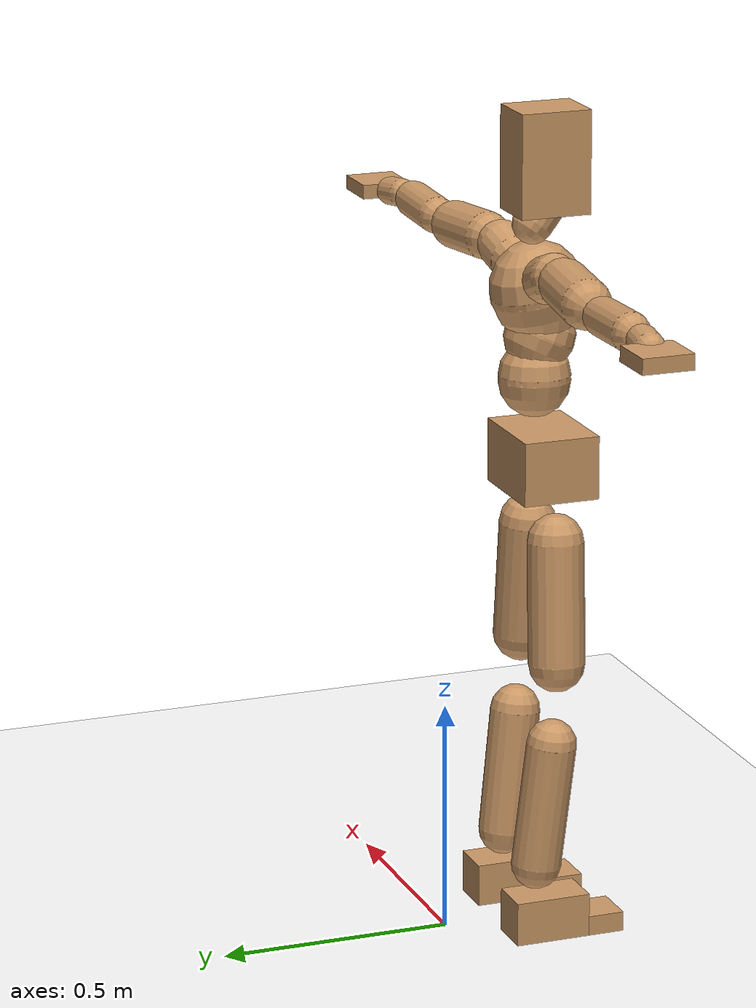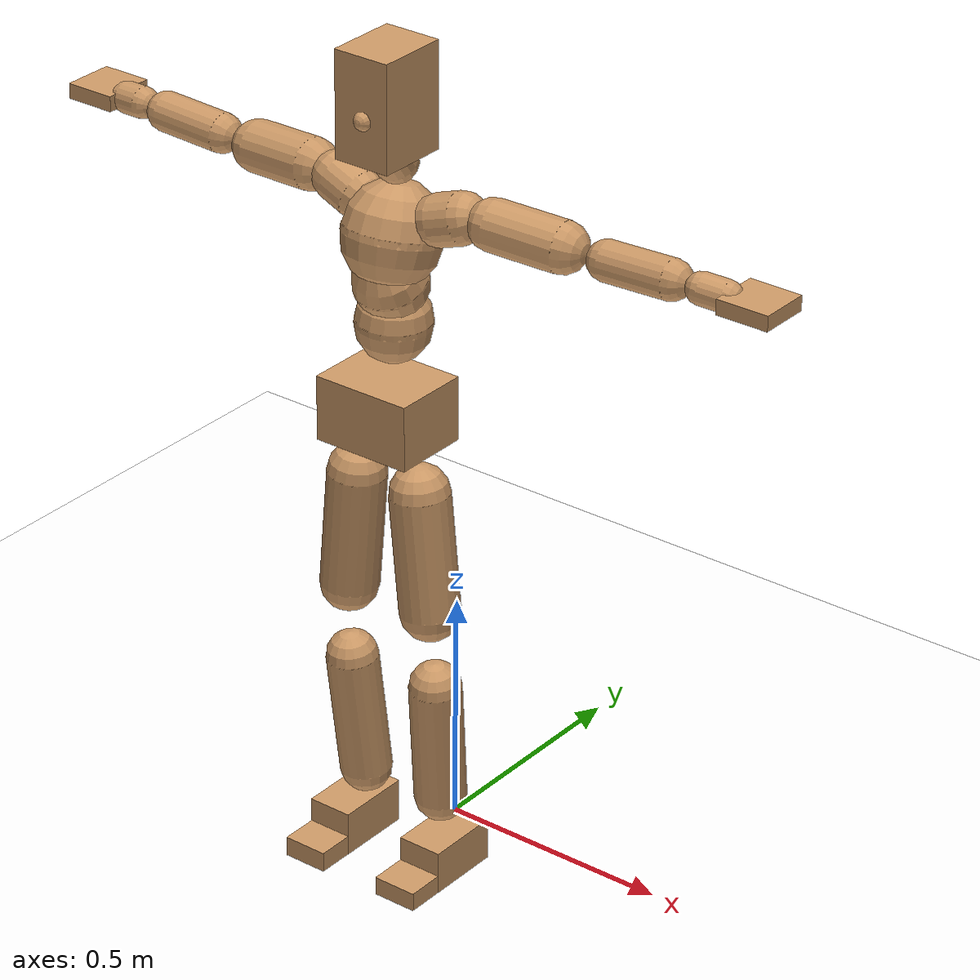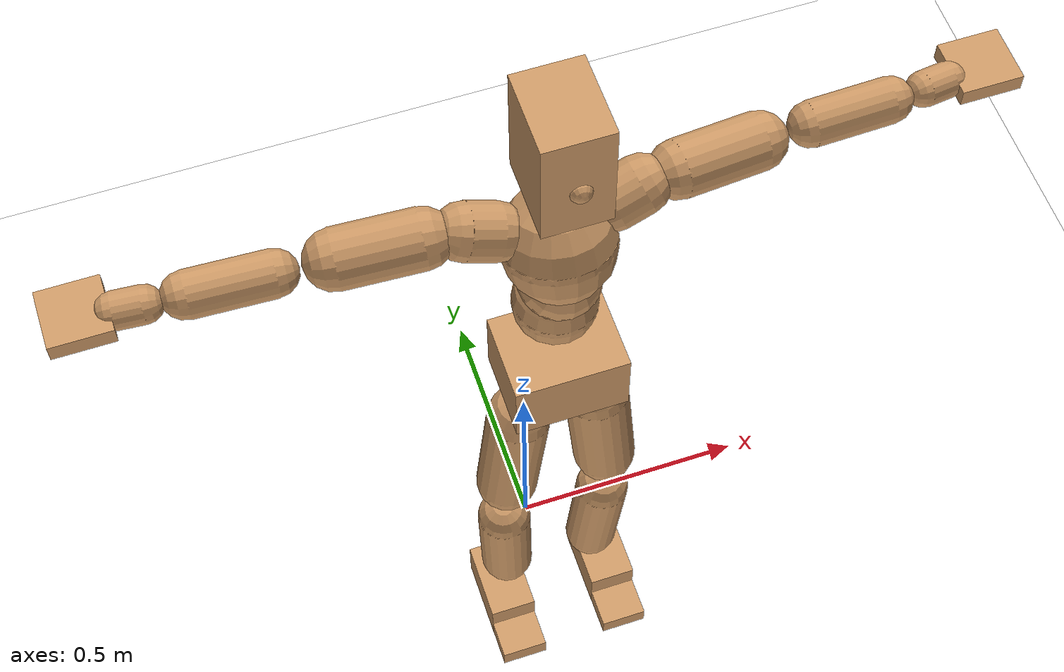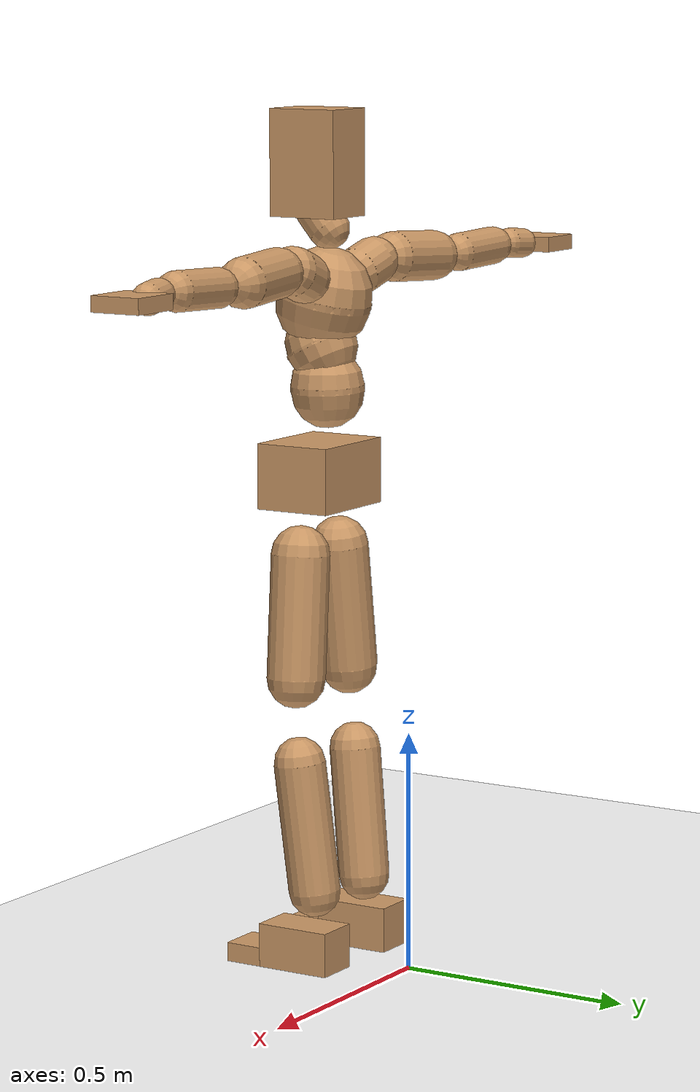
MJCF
<mujoco model="humanoid">
  <option integrator="implicitfast" />

  <visual>
    <global offwidth="1280" offheight="960" />
    <headlight active="1" ambient="0.34 0.34 0.34" diffuse="0.5 0.5 0.5" />
  </visual>

  <default>
    <joint damping="2" stiffness="2" armature="0.01" limited="true" solimplimit="0 .99 .01" />
    <geom condim="1" friction="0.7 0.005 0.0001" solimp=".99 .99 .003" solref="0.015 1" margin="0.001" rgba="0.8 0.6 .4 1" />
    <default class="smplcontact">
      <geom condim="3" friction="1. 0.005 0.0001" solref="0.015 1" solimp="0.98 0.98 0.001" priority="1" />
    </default>
    <default class="stiff_medium">
      <joint stiffness="10" />
    </default>
    <default class="stiff_medium_higher">
      <joint stiffness="50" />
    </default>
    <default class="stiff_high">
      <joint stiffness="100" />
    </default>
  </default>

  <asset>
    <texture type="skybox" builtin="gradient" rgb1="0.99 0.99 0.99" rgb2="0.608 0.828 0.892" width="100" />
    <texture builtin="flat" height="1278" mark="cross" markrgb="1 1 1" name="texgeom" random="0.01" rgb1="0.8 0.6 0.4" rgb2="0.8 0.6 0.4" type="cube" width="127" />
    <texture name="texplane" type="2d" builtin="checker" markrgb="1 1 1" rgb1="0.756 0.772 0.76" rgb2="0.6 0.6 0.6" width="100" height="100" />
    <material name="MatPlane" reflectance="0.5" texture="texplane" texrepeat="1 1" texuniform="true" />
    <material name="geom" texture="texgeom" texuniform="true" />
  </asset>

  <worldbody>
    <light name="tracking_light" pos="0 0 7" dir="0 0 -1" directional="true" cutoff="100" exponent="1" diffuse="1 1 1" specular="0.1 0.1 0.1" mode="trackcom" />
    <camera name="back" pos="0 3 2.4" xyaxes="-1 0 0 0 -1 2" mode="trackcom" />
    <camera name="side" pos="-3 0 2.4" xyaxes="0 -1 0 1 0 2" mode="trackcom" />
    <camera name="front_side" pos="-2.8 -2.8 0.8" xyaxes="0.5 -0.5 0 0.1 0.1 1" mode="trackcom" />
    <geom condim="3" name="floor" pos="0 0 0" rgba="1 1 1 1" size="100 100 .2" type="plane" material="MatPlane" />
    <body name="Pelvis" pos="-0.0018 -0.2233 1.03968" euler="90 0 0">
      <site name="Pelvis" size="0.01" />
      <freejoint name="Pelvis" />
      <geom type="box" pos="0 -0.011473 -0.0055" size="0.1069 0.0684586 0.083" quat="1.0000 0.0000 0.0000 0.0000" density="3165.830099" name="Pelvis" />
      <body name="L_Hip" pos="0.0695 -0.0866636 -0.0068">
        <joint name="L_Hip_x" type="hinge" pos="0 0 0" axis="1 0 0" stiffness="10" range="-160.0 22.92" class="stiff_medium" damping="15" />
        <joint name="L_Hip_y" type="hinge" pos="0 0 0" axis="0 1 0" stiffness="10" range="-70.0 70.0" class="stiff_medium" damping="10" />
        <joint name="L_Hip_z" type="hinge" pos="0 0 0" axis="0 0 1" stiffness="10" range="-28.65 90.0" class="stiff_medium" damping="10" />
        <geom type="capsule" density="2040.816327" fromto="0.00784127 -0.0853401 -0.00102397 0.0311673 -0.341585 -0.00409618" size="0.0615" name="L_Hip" />
        <body name="L_Knee" pos="0.0390086 -0.426926 -0.00512016">
          <joint name="L_Knee_x" type="hinge" pos="0 0 0" axis="1 0 0" range="-5.16 171.89" damping="8" />
          <joint name="L_Knee_y" type="hinge" pos="0 0 0" axis="0 1 0" range="-4.58 6.88" damping="8" />
          <joint name="L_Knee_z" type="hinge" pos="0 0 0" axis="0 0 1" range="-6.88 4.58" damping="8" />
          <geom type="capsule" density="1234.567901" fromto="-0.00307677 -0.0905722 -0.00990841 -0.0124072 -0.362292 -0.039834" size="0.0541" name="L_Knee" />
          <body name="L_Ankle" pos="-0.015484 -0.452865 -0.0497425">
            <joint name="L_Ankle_x" type="hinge" pos="0 0 0" axis="1 0 0" range="-45.84 45.84" class="stiff_medium" damping="6" />
            <joint name="L_Ankle_y" type="hinge" pos="0 0 0" axis="0 1 0" range="-74.48 22.92" class="stiff_medium" damping="3" />
            <joint name="L_Ankle_z" type="hinge" pos="0 0 0" axis="0 0 1" range="-4.58 4.58" class="stiff_medium" damping="6" />
            <geom type="box" pos="0.0233 -0.0239 0.0230626" size="0.0483 0.0464 0.0810051" quat="1.0000 0.0000 0.0000 0.0000" density="449.071558" name="L_Ankle" class="smplcontact" />
            <body name="L_Toe" pos="0.0264 -0.0558 0.113693">
              <joint name="L_Toe_x" type="hinge" pos="0 0 0" axis="1 0 0" range="-91.67 22.92" />
              <joint name="L_Toe_y" type="hinge" pos="0 0 0" axis="0 1 0" range="-4.58 4.58" />
              <joint name="L_Toe_z" type="hinge" pos="0 0 0" axis="0 0 1" range="-4.58 4.58" />
              <geom type="box" pos="-0.003 0.0055 0.0236344" size="0.0478 0.02 0.0472688" quat="1.0000 0.0000 0.0000 0.0000" density="423.206892" name="L_Toe" class="smplcontact" />
            </body>
          </body>
        </body>
      </body>
      <body name="R_Hip" pos="-0.0677 -0.0858102 -0.0043">
        <joint name="R_Hip_x" type="hinge" pos="0 0 0" axis="1 0 0" stiffness="10" range="-160.0 22.92" class="stiff_medium" damping="15" />
        <joint name="R_Hip_y" type="hinge" pos="0 0 0" axis="0 1 0" stiffness="10" range="-70.0 70.0" class="stiff_medium" damping="10" />
        <joint name="R_Hip_z" type="hinge" pos="0 0 0" axis="0 0 1" stiffness="10" range="-90.0 28.65" class="stiff_medium" damping="10" />
        <geom type="capsule" density="2040.816327" fromto="-0.00875195 -0.0870471 -0.00204346 -0.0348089 -0.348299 -0.0080741" size="0.0606" name="R_Hip" />
        <body name="R_Knee" pos="-0.0435608 -0.435346 -0.0101176">
          <joint name="R_Knee_x" type="hinge" pos="0 0 0" axis="1 0 0" range="-5.16 171.89" damping="8" />
          <joint name="R_Knee_y" type="hinge" pos="0 0 0" axis="0 1 0" range="-6.88 4.58" damping="8" />
          <joint name="R_Knee_z" type="hinge" pos="0 0 0" axis="0 0 1" range="-4.58 6.88" damping="8" />
          <geom type="capsule" density="1234.567901" fromto="0.00363218 -0.0906884 -0.00966321 0.014328 -0.362636 -0.038451" size="0.0541" name="R_Knee" />
          <body name="R_Ankle" pos="0.0179602 -0.453325 -0.0481142">
            <joint name="R_Ankle_x" type="hinge" pos="0 0 0" axis="1 0 0" range="-45.84 45.84" class="stiff_medium" damping="6" />
            <joint name="R_Ankle_y" type="hinge" pos="0 0 0" axis="0 1 0" range="-22.92 74.48" class="stiff_medium" damping="3" />
            <joint name="R_Ankle_z" type="hinge" pos="0 0 0" axis="0 0 1" range="-4.58 4.58" class="stiff_medium" damping="6" />
            <geom type="box" pos="-0.0212 -0.0174 0.0243968" size="0.0483 0.0478 0.0824346" quat="1.0000 0.0000 0.0000 0.0000" density="434.700981" name="R_Ankle" class="smplcontact" />
            <body name="R_Toe" pos="-0.0254 -0.0481 0.117505">
              <joint name="R_Toe_x" type="hinge" pos="0 0 0" axis="1 0 0" range="-91.67 22.92" />
              <joint name="R_Toe_y" type="hinge" pos="0 0 0" axis="0 1 0" range="-4.58 4.58" />
              <joint name="R_Toe_z" type="hinge" pos="0 0 0" axis="0 0 1" range="-4.58 4.58" />
              <geom type="box" pos="0.0042 0.0045 0.0216331" size="0.0479 0.0216 0.0469829" quat="1.0000 0.0000 0.0000 0.0000" density="407.384095" name="R_Toe" class="smplcontact" />
            </body>
          </body>
        </body>
      </body>
      <body name="Torso" pos="-0.0025 0.103352 -0.0267">
        <joint name="Torso_x" type="hinge" pos="0 0 0" axis="1 0 0" range="-25.78 57.3" class="stiff_medium" damping="15" />
        <joint name="Torso_y" type="hinge" pos="0 0 0" axis="0 1 0" range="-57.3 57.3" class="stiff_high" damping="20" />
        <joint name="Torso_z" type="hinge" pos="0 0 0" axis="0 0 1" range="-34.38 34.38" class="stiff_high" damping="20" />
        <geom type="capsule" density="2040.816327" fromto="0.00238329 0.0576488 0.000476658 0.00285738 0.0704492 0.000571476" size="0.0769" name="Torso" />
        <body name="Spine" pos="0.00524048 0.128193 0.0010481">
          <joint name="Spine_x" type="hinge" pos="0 0 0" axis="1 0 0" stiffness="10" range="-25.78 57.3" class="stiff_medium" damping="15" />
          <joint name="Spine_y" type="hinge" pos="0 0 0" axis="0 1 0" stiffness="10" range="-57.3 57.3" class="stiff_high" damping="8" />
          <joint name="Spine_z" type="hinge" pos="0 0 0" axis="0 0 1" stiffness="20" range="-34.38 34.38" class="stiff_high" damping="12" />
          <geom type="capsule" density="2040.816327" fromto="0.000676832 0.0225721 0.0107976 0.00077165 0.0275975 0.0132629" size="0.0755" name="Spine" />
          <body name="Chest" pos="0.00144848 0.0501696 0.0240606">
            <joint name="Chest_x" type="hinge" pos="0 0 0" axis="1 0 0" stiffness="10" range="-25.78 57.3" class="stiff_medium" damping="15" />
            <joint name="Chest_y" type="hinge" pos="0 0 0" axis="0 1 0" stiffness="10" range="-57.3 57.3" class="stiff_high" damping="8" />
            <joint name="Chest_z" type="hinge" pos="0 0 0" axis="0 0 1" stiffness="20" range="-34.38 34.38" class="stiff_high" damping="12" />
            <geom type="capsule" density="2040.816327" fromto="-0.00087662 0.0646696 -0.0163882 -0.000971438 0.0789872 -0.0200861" size="0.1002" name="Chest" />
            <body name="Neck" pos="-0.00272762 0.20297 -0.040077">
              <joint name="Neck_x" type="hinge" pos="0 0 0" axis="1 0 0" range="-28.65 57.3" class="stiff_medium_higher" damping="10" />
              <joint name="Neck_y" type="hinge" pos="0 0 0" axis="0 1 0" range="-40.11 40.11" class="stiff_medium_higher" damping="10" />
              <joint name="Neck_z" type="hinge" pos="0 0 0" axis="0 0 1" range="-40.11 40.11" class="stiff_medium_higher" damping="10" />
              <geom type="capsule" density="1000" fromto="0.000951208 0.0123883 0.00981705 0.00390551 0.0495553 0.0391695" size="0.043818" name="Neck" />
              <body name="Head" pos="0.0049574 0.0619458 0.0488878">
                <joint name="Head_x" type="hinge" pos="0 0 0" axis="1 0 0" range="-28.65 57.3" class="stiff_medium_higher" damping="2" />
                <joint name="Head_y" type="hinge" pos="0 0 0" axis="0 1 0" range="-40.11 40.11" class="stiff_medium_higher" damping="2" />
                <joint name="Head_z" type="hinge" pos="0 0 0" axis="0 0 1" range="-40.11 40.11" class="stiff_medium_higher" damping="2" />
                <geom type="box" pos="-0.004221 0.0834829 -0.011658" size="0.060903 0.109976 0.07638" quat="1.0000 0.0000 0.0000 0.0000" density="1018.069894" name="Head" />
                <geom type="capsule" name="nose" size="0.0201 0.01005" pos="0 0.0667101 0.05025" quat="1 0 0 0" mass="0" contype="0" conaffinity="0" />
              </body>
            </body>
            <body name="L_Thorax" pos="0.0788418 0.115386 -0.0324691">
              <joint name="L_Thorax_x" type="hinge" pos="0 0 0" axis="1 0 0" range="-10.89 4.58" class="stiff_medium_higher" damping="20" />
              <joint name="L_Thorax_y" type="hinge" pos="0 0 0" axis="0 1 0" range="-28.65 17.19" class="stiff_medium_higher" damping="20" />
              <joint name="L_Thorax_z" type="hinge" pos="0 0 0" axis="0 0 1" range="-31.51 40.11" class="stiff_medium_higher" damping="20" />
              <geom type="capsule" density="1000" fromto="0.0172567 0.00578385 -0.00170844 0.0690273 0.0231355 -0.00673379" size="0.0521" name="L_Thorax" />
              <body name="L_Shoulder" pos="0.086284 0.0289194 -0.00844222">
                <joint name="L_Shoulder_x" type="hinge" pos="0 0 0" axis="1 0 0" range="-97.4 97.4" class="stiff_medium" damping="6" />
                <joint name="L_Shoulder_y" type="hinge" pos="0 0 0" axis="0 1 0" range="-108.86 80.21" class="stiff_medium" damping="6" />
                <joint name="L_Shoulder_z" type="hinge" pos="0 0 0" axis="0 0 1" range="-97.4 85.94" class="stiff_medium" damping="6" />
                <geom type="capsule" density="1000" fromto="0.0492103 -0.0024688 -0.00521515 0.196937 -0.00967496 -0.0208601" size="0.0517" name="L_Shoulder" />
                <body name="L_Elbow" pos="0.246147 -0.0121438 -0.0260753">
                  <joint name="L_Elbow_x" type="hinge" pos="0 0 0" axis="1 0 0" range="-17.19 4.58" damping="5" />
                  <joint name="L_Elbow_y" type="hinge" pos="0 0 0" axis="0 1 0" range="-180.0 17.19" damping="5" />
                  <joint name="L_Elbow_z" type="hinge" pos="0 0 0" axis="0 0 1" range="-100.84 4.58" damping="5" />
                  <geom type="capsule" density="1000" fromto="0.0472193 0.00170685 -0.000187925 0.189067 0.00682702 -0.00085165" size="0.0405" name="L_Elbow" />
                  <body name="L_Wrist" pos="0.236286 0.00853386 -0.00113958">
                    <joint name="L_Wrist_x" type="hinge" pos="0 0 0" axis="1 0 0" range="-180.0 22.92" />
                    <joint name="L_Wrist_y" type="hinge" pos="0 0 0" axis="0 1 0" range="-17.19 17.19" />
                    <joint name="L_Wrist_z" type="hinge" pos="0 0 0" axis="0 0 1" range="-22.92 22.92" />
                    <geom type="capsule" density="1000" fromto="0.0159296 -0.00151538 -0.00284457 0.0637178 -0.00616146 -0.0113782" size="0.0318" name="L_Wrist" class="smplcontact" />
                    <body name="L_Hand" pos="0.0796478 -0.00777687 -0.0141228">
                      <joint name="L_Hand_x" type="hinge" pos="0 0 0" axis="1 0 0" range="-17.19 17.19" />
                      <joint name="L_Hand_y" type="hinge" pos="0 0 0" axis="0 1 0" range="-51.57 51.57" />
                      <joint name="L_Hand_z" type="hinge" pos="0 0 0" axis="0 0 1" range="-91.67 91.67" />
                      <geom type="box" pos="0.0467453 0.001 -0.0058" size="0.0554685 0.0158 0.0538" quat="1.0000 0.0000 0.0000 0.0000" density="400.552564" name="L_Hand" class="smplcontact" />
                    </body>
                  </body>
                </body>
              </body>
            </body>
            <body name="R_Thorax" pos="-0.0817584 0.112518 -0.0369776">
              <joint name="R_Thorax_x" type="hinge" pos="0 0 0" axis="1 0 0" range="-10.89 4.58" class="stiff_medium_higher" damping="20" />
              <joint name="R_Thorax_y" type="hinge" pos="0 0 0" axis="0 1 0" range="-17.19 28.65" class="stiff_medium_higher" damping="20" />
              <joint name="R_Thorax_z" type="hinge" pos="0 0 0" axis="0 0 1" range="-40.11 31.51" class="stiff_medium_higher" damping="20" />
              <geom type="capsule" density="1000" fromto="-0.0182052 0.00616322 -0.00170501 -0.0728203 0.0246527 -0.00692" size="0.0511" name="R_Thorax" />
              <body name="R_Shoulder" pos="-0.091024 0.0309154 -0.00862486">
                <joint name="R_Shoulder_x" type="hinge" pos="0 0 0" axis="1 0 0" range="-97.4 97.4" class="stiff_medium" damping="6" />
                <joint name="R_Shoulder_y" type="hinge" pos="0 0 0" axis="0 1 0" range="-80.21 108.86" class="stiff_medium" damping="6" />
                <joint name="R_Shoulder_z" type="hinge" pos="0 0 0" axis="0 0 1" range="-85.94 97.4" class="stiff_medium" damping="6" />
                <geom type="capsule" density="1000" fromto="-0.0480724 -0.00256198 -0.00407917 -0.19248 -0.0101474 -0.0162159" size="0.0531" name="R_Shoulder" />
                <body name="R_Elbow" pos="-0.240553 -0.0126094 -0.0202951">
                  <joint name="R_Elbow_x" type="hinge" pos="0 0 0" axis="1 0 0" range="-17.19 4.58" damping="5" />
                  <joint name="R_Elbow_y" type="hinge" pos="0 0 0" axis="0 1 0" range="-17.19 180.0" damping="5" />
                  <joint name="R_Elbow_z" type="hinge" pos="0 0 0" axis="0 0 1" range="-4.58 100.84" damping="5" />
                  <geom type="capsule" density="1000" fromto="-0.0484519 0.00152044 -0.00104292 -0.193618 0.00588206 -0.00417191" size="0.0408" name="R_Elbow" />
                  <body name="R_Wrist" pos="-0.24207 0.00740249 -0.00531483">
                    <joint name="R_Wrist_x" type="hinge" pos="0 0 0" axis="1 0 0" range="-180.0 22.92" />
                    <joint name="R_Wrist_y" type="hinge" pos="0 0 0" axis="0 1 0" range="-17.19 17.19" />
                    <joint name="R_Wrist_z" type="hinge" pos="0 0 0" axis="0 0 1" range="-22.92 22.92" />
                    <geom type="capsule" density="1000" fromto="-0.0160241 -0.00113621 -0.0019931 -0.0641916 -0.00464447 -0.00787181" size="0.0326" name="R_Wrist" class="smplcontact" />
                    <body name="R_Hand" pos="-0.0802164 -0.00578072 -0.00976499">
                      <joint name="R_Hand_x" type="hinge" pos="0 0 0" axis="1 0 0" range="-17.19 17.19" />
                      <joint name="R_Hand_y" type="hinge" pos="0 0 0" axis="0 1 0" range="-51.57 51.57" />
                      <joint name="R_Hand_z" type="hinge" pos="0 0 0" axis="0 0 1" range="-91.67 91.67" />
                      <geom type="box" pos="-0.0438059 -0.0009 -0.0079" size="0.0539514 0.0164 0.0546" quat="1.0000 0.0000 0.0000 0.0000" density="403.679611" name="R_Hand" class="smplcontact" />
                    </body>
                  </body>
                </body>
              </body>
            </body>
          </body>
        </body>
      </body>
    </body>
  </worldbody>
  <actuator>
    <general name="L_Hip_x" joint="L_Hip_x" biastype="affine" gainprm="287.33006409732246" biasprm="-215.3247604770444 -180 -2.0" ctrllimited="true" ctrlrange="-1 1" forcerange="-360 360" />
    <general name="L_Hip_y" joint="L_Hip_y" biastype="affine" gainprm="219.9114857512855" biasprm="0.0 -180 -2.0" ctrllimited="true" ctrlrange="-1 1" forcerange="-360 360" />
    <general name="L_Hip_z" joint="L_Hip_z" biastype="affine" gainprm="186.3749841742145" biasprm="96.3683546488669 -180 -2.0" ctrllimited="true" ctrlrange="-1 1" forcerange="-360 360" />
    <general name="L_Knee_x" joint="L_Knee_x" biastype="affine" gainprm="278.10948965903646" biasprm="261.8988715665131 -180 -2.0" ctrllimited="true" ctrlrange="-1 1" forcerange="-360 360" />
    <general name="L_Knee_y" joint="L_Knee_y" biastype="affine" gainprm="18.001325905069514" biasprm="3.612831551628262 -180 -2.0" ctrllimited="true" ctrlrange="-1 1" forcerange="-360 360" />
    <general name="L_Knee_z" joint="L_Knee_z" biastype="affine" gainprm="18.001325905069514" biasprm="-3.612831551628262 -180 -2.0" ctrllimited="true" ctrlrange="-1 1" forcerange="-360 360" />
    <general name="L_Ankle_x" joint="L_Ankle_x" biastype="affine" gainprm="72.00530362027807" biasprm="0.0 -90 -2.0" ctrllimited="true" ctrlrange="-1 1" forcerange="-180 180" />
    <general name="L_Ankle_y" joint="L_Ankle_y" biastype="affine" gainprm="76.49778111491148" biasprm="-40.49512930477244 -90 -2.0" ctrllimited="true" ctrlrange="-1 1" forcerange="-180 180" />
    <general name="L_Ankle_z" joint="L_Ankle_z" biastype="affine" gainprm="7.1942471767206255" biasprm="0.0 -90 -2.0" ctrllimited="true" ctrlrange="-1 1" forcerange="-180 180" />
    <general name="L_Toe_x" joint="L_Toe_x" biastype="affine" gainprm="71.99902043497087" biasprm="-43.19689898685965 -72 -0.8" ctrllimited="true" ctrlrange="-1 1" forcerange="-144 144" />
    <general name="L_Toe_y" joint="L_Toe_y" biastype="affine" gainprm="5.755397741376501" biasprm="0.0 -72 -0.8" ctrllimited="true" ctrlrange="-1 1" forcerange="-144 144" />
    <general name="L_Toe_z" joint="L_Toe_z" biastype="affine" gainprm="5.755397741376501" biasprm="0.0 -72 -0.8" ctrllimited="true" ctrlrange="-1 1" forcerange="-144 144" />
    <general name="R_Hip_x" joint="R_Hip_x" biastype="affine" gainprm="287.33006409732246" biasprm="-215.3247604770444 -180 -2.0" ctrllimited="true" ctrlrange="-1 1" forcerange="-360 360" />
    <general name="R_Hip_y" joint="R_Hip_y" biastype="affine" gainprm="219.9114857512855" biasprm="0.0 -180 -2.0" ctrllimited="true" ctrlrange="-1 1" forcerange="-360 360" />
    <general name="R_Hip_z" joint="R_Hip_z" biastype="affine" gainprm="186.3749841742145" biasprm="-96.3683546488669 -180 -2.0" ctrllimited="true" ctrlrange="-1 1" forcerange="-360 360" />
    <general name="R_Knee_x" joint="R_Knee_x" biastype="affine" gainprm="278.10948965903646" biasprm="261.8988715665131 -180 -2.0" ctrllimited="true" ctrlrange="-1 1" forcerange="-360 360" />
    <general name="R_Knee_y" joint="R_Knee_y" biastype="affine" gainprm="18.001325905069514" biasprm="-3.612831551628262 -180 -2.0" ctrllimited="true" ctrlrange="-1 1" forcerange="-360 360" />
    <general name="R_Knee_z" joint="R_Knee_z" biastype="affine" gainprm="18.001325905069514" biasprm="3.612831551628262 -180 -2.0" ctrllimited="true" ctrlrange="-1 1" forcerange="-360 360" />
    <general name="R_Ankle_x" joint="R_Ankle_x" biastype="affine" gainprm="72.00530362027807" biasprm="0.0 -90 -2.0" ctrllimited="true" ctrlrange="-1 1" forcerange="-180 180" />
    <general name="R_Ankle_y" joint="R_Ankle_y" biastype="affine" gainprm="76.49778111491148" biasprm="40.49512930477244 -90 -2.0" ctrllimited="true" ctrlrange="-1 1" forcerange="-180 180" />
    <general name="R_Ankle_z" joint="R_Ankle_z" biastype="affine" gainprm="7.1942471767206255" biasprm="0.0 -90 -2.0" ctrllimited="true" ctrlrange="-1 1" forcerange="-180 180" />
    <general name="R_Toe_x" joint="R_Toe_x" biastype="affine" gainprm="71.99902043497087" biasprm="-43.19689898685965 -72 -0.8" ctrllimited="true" ctrlrange="-1 1" forcerange="-144 144" />
    <general name="R_Toe_y" joint="R_Toe_y" biastype="affine" gainprm="5.755397741376501" biasprm="0.0 -72 -0.8" ctrllimited="true" ctrlrange="-1 1" forcerange="-144 144" />
    <general name="R_Toe_z" joint="R_Toe_z" biastype="affine" gainprm="5.755397741376501" biasprm="0.0 -72 -0.8" ctrllimited="true" ctrlrange="-1 1" forcerange="-144 144" />
    <general name="Torso_x" joint="Torso_x" biastype="affine" gainprm="174.00234510682668" biasprm="66.0153336274335 -240 -4.0" ctrllimited="true" ctrlrange="-1 1" forcerange="-360 360" />
    <general name="Torso_y" joint="Torso_y" biastype="affine" gainprm="240.0176787342602" biasprm="0.0 -240 -4.0" ctrllimited="true" ctrlrange="-1 1" forcerange="-360 360" />
    <general name="Torso_z" joint="Torso_z" biastype="affine" gainprm="144.01060724055614" biasprm="0.0 -240 -4.0" ctrllimited="true" ctrlrange="-1 1" forcerange="-360 360" />
    <general name="Spine_x" joint="Spine_x" biastype="affine" gainprm="174.00234510682668" biasprm="66.0153336274335 -240 -4.0" ctrllimited="true" ctrlrange="-1 1" forcerange="-360 360" />
    <general name="Spine_y" joint="Spine_y" biastype="affine" gainprm="240.0176787342602" biasprm="0.0 -240 -4.0" ctrllimited="true" ctrlrange="-1 1" forcerange="-360 360" />
    <general name="Spine_z" joint="Spine_z" biastype="affine" gainprm="144.01060724055614" biasprm="0.0 -240 -4.0" ctrllimited="true" ctrlrange="-1 1" forcerange="-360 360" />
    <general name="Chest_x" joint="Chest_x" biastype="affine" gainprm="174.00234510682668" biasprm="66.0153336274335 -240 -4.0" ctrllimited="true" ctrlrange="-1 1" forcerange="-360 360" />
    <general name="Chest_y" joint="Chest_y" biastype="affine" gainprm="240.0176787342602" biasprm="0.0 -240 -4.0" ctrllimited="true" ctrlrange="-1 1" forcerange="-360 360" />
    <general name="Chest_z" joint="Chest_z" biastype="affine" gainprm="144.01060724055614" biasprm="0.0 -240 -4.0" ctrllimited="true" ctrlrange="-1 1" forcerange="-360 360" />
    <general name="Neck_x" joint="Neck_x" biastype="affine" gainprm="27.00198885760427" biasprm="9.000662952534757 -36 -0.8" ctrllimited="true" ctrlrange="-1 1" forcerange="-72 72" />
    <general name="Neck_y" joint="Neck_y" biastype="affine" gainprm="25.20185626709732" biasprm="0.0 -36 -0.8" ctrllimited="true" ctrlrange="-1 1" forcerange="-72 72" />
    <general name="Neck_z" joint="Neck_z" biastype="affine" gainprm="25.20185626709732" biasprm="0.0 -36 -0.8" ctrllimited="true" ctrlrange="-1 1" forcerange="-72 72" />
    <general name="Head_x" joint="Head_x" biastype="affine" gainprm="18.001325905069514" biasprm="6.000441968356505 -24 -0.8" ctrllimited="true" ctrlrange="-1 1" forcerange="-48 48" />
    <general name="Head_y" joint="Head_y" biastype="affine" gainprm="16.801237511398213" biasprm="0.0 -24 -0.8" ctrllimited="true" ctrlrange="-1 1" forcerange="-48 48" />
    <general name="Head_z" joint="Head_z" biastype="affine" gainprm="16.801237511398213" biasprm="0.0 -24 -0.8" ctrllimited="true" ctrlrange="-1 1" forcerange="-48 48" />
    <general name="L_Thorax_x" joint="L_Thorax_x" biastype="affine" gainprm="16.200146117011364" biasprm="-6.6078165480505335 -120 -1.6" ctrllimited="true" ctrlrange="-1 1" forcerange="-240 240" />
    <general name="L_Thorax_y" joint="L_Thorax_y" biastype="affine" gainprm="48.00353574685204" biasprm="-12.00088393671301 -120 -1.6" ctrllimited="true" ctrlrange="-1 1" forcerange="-240 240" />
    <general name="L_Thorax_z" joint="L_Thorax_z" biastype="affine" gainprm="75.00028861670033" biasprm="9.00589894029074 -120 -1.6" ctrllimited="true" ctrlrange="-1 1" forcerange="-240 240" />
    <general name="L_Shoulder_x" joint="L_Shoulder_x" biastype="affine" gainprm="81.5976331892389" biasprm="0.0 -48 -1.6" ctrllimited="true" ctrlrange="-1 1" forcerange="-96 96" />
    <general name="L_Shoulder_y" joint="L_Shoulder_y" biastype="affine" gainprm="79.19745640189629" biasprm="-12.00088393671301 -48 -1.6" ctrllimited="true" ctrlrange="-1 1" forcerange="-96 96" />
    <general name="L_Shoulder_z" joint="L_Shoulder_z" biastype="affine" gainprm="76.79727961455369" biasprm="-4.800353574685214 -48 -1.6" ctrllimited="true" ctrlrange="-1 1" forcerange="-96 96" />
    <general name="L_Elbow_x" joint="L_Elbow_x" biastype="affine" gainprm="13.67849441372996" biasprm="-7.923096672353461 -72 -0.8" ctrllimited="true" ctrlrange="-1 1" forcerange="-144 144" />
    <general name="L_Elbow_y" joint="L_Elbow_y" biastype="affine" gainprm="123.89813107227425" biasprm="-102.29653998619085 -72 -0.8" ctrllimited="true" ctrlrange="-1 1" forcerange="-144 144" />
    <general name="L_Elbow_z" joint="L_Elbow_z" biastype="affine" gainprm="66.23733950828719" biasprm="-60.4819417669107 -72 -0.8" ctrllimited="true" ctrlrange="-1 1" forcerange="-144 144" />
    <general name="L_Wrist_x" joint="L_Wrist_x" biastype="affine" gainprm="21.24973270888136" biasprm="-16.449379134196157 -12 -0.8" ctrllimited="true" ctrlrange="-1 1" forcerange="-24 24" />
    <general name="L_Wrist_y" joint="L_Wrist_y" biastype="affine" gainprm="3.6002651810139037" biasprm="0.0 -12 -0.8" ctrllimited="true" ctrlrange="-1 1" forcerange="-24 24" />
    <general name="L_Wrist_z" joint="L_Wrist_z" biastype="affine" gainprm="4.800353574685205" biasprm="0.0 -12 -0.8" ctrllimited="true" ctrlrange="-1 1" forcerange="-24 24" />
    <general name="L_Hand_x" joint="L_Hand_x" biastype="affine" gainprm="3.6002651810139037" biasprm="0.0 -12 -0.8" ctrllimited="true" ctrlrange="-1 1" forcerange="-24 24" />
    <general name="L_Hand_y" joint="L_Hand_y" biastype="affine" gainprm="10.800795543041708" biasprm="0.0 -12 -0.8" ctrllimited="true" ctrlrange="-1 1" forcerange="-24 24" />
    <general name="L_Hand_z" joint="L_Hand_z" biastype="affine" gainprm="19.199319903638422" biasprm="0.0 -12 -0.8" ctrllimited="true" ctrlrange="-1 1" forcerange="-24 24" />
    <general name="R_Thorax_x" joint="R_Thorax_x" biastype="affine" gainprm="16.200146117011364" biasprm="-6.6078165480505335 -120 -1.6" ctrllimited="true" ctrlrange="-1 1" forcerange="-240 240" />
    <general name="R_Thorax_y" joint="R_Thorax_y" biastype="affine" gainprm="48.00353574685204" biasprm="12.000883936713002 -120 -1.6" ctrllimited="true" ctrlrange="-1 1" forcerange="-240 240" />
    <general name="R_Thorax_z" joint="R_Thorax_z" biastype="affine" gainprm="75.00028861670033" biasprm="-9.00589894029074 -120 -1.6" ctrllimited="true" ctrlrange="-1 1" forcerange="-240 240" />
    <general name="R_Shoulder_x" joint="R_Shoulder_x" biastype="affine" gainprm="81.5976331892389" biasprm="0.0 -48 -1.6" ctrllimited="true" ctrlrange="-1 1" forcerange="-96 96" />
    <general name="R_Shoulder_y" joint="R_Shoulder_y" biastype="affine" gainprm="79.19745640189629" biasprm="12.00088393671301 -48 -1.6" ctrllimited="true" ctrlrange="-1 1" forcerange="-96 96" />
    <general name="R_Shoulder_z" joint="R_Shoulder_z" biastype="affine" gainprm="76.79727961455369" biasprm="4.800353574685204 -48 -1.6" ctrllimited="true" ctrlrange="-1 1" forcerange="-96 96" />
    <general name="R_Elbow_x" joint="R_Elbow_x" biastype="affine" gainprm="13.67849441372996" biasprm="-7.923096672353461 -72 -0.8" ctrllimited="true" ctrlrange="-1 1" forcerange="-144 144" />
    <general name="R_Elbow_y" joint="R_Elbow_y" biastype="affine" gainprm="123.89813107227425" biasprm="102.29653998619085 -72 -0.8" ctrllimited="true" ctrlrange="-1 1" forcerange="-144 144" />
    <general name="R_Elbow_z" joint="R_Elbow_z" biastype="affine" gainprm="66.23733950828719" biasprm="60.481941766910694 -72 -0.8" ctrllimited="true" ctrlrange="-1 1" forcerange="-144 144" />
    <general name="R_Wrist_x" joint="R_Wrist_x" biastype="affine" gainprm="21.24973270888136" biasprm="-16.449379134196157 -12 -0.8" ctrllimited="true" ctrlrange="-1 1" forcerange="-24 24" />
    <general name="R_Wrist_y" joint="R_Wrist_y" biastype="affine" gainprm="3.6002651810139037" biasprm="0.0 -12 -0.8" ctrllimited="true" ctrlrange="-1 1" forcerange="-24 24" />
    <general name="R_Wrist_z" joint="R_Wrist_z" biastype="affine" gainprm="4.800353574685205" biasprm="0.0 -12 -0.8" ctrllimited="true" ctrlrange="-1 1" forcerange="-24 24" />
    <general name="R_Hand_x" joint="R_Hand_x" biastype="affine" gainprm="3.6002651810139037" biasprm="0.0 -12 -0.8" ctrllimited="true" ctrlrange="-1 1" forcerange="-24 24" />
    <general name="R_Hand_y" joint="R_Hand_y" biastype="affine" gainprm="10.800795543041708" biasprm="0.0 -12 -0.8" ctrllimited="true" ctrlrange="-1 1" forcerange="-24 24" />
    <general name="R_Hand_z" joint="R_Hand_z" biastype="affine" gainprm="19.199319903638422" biasprm="0.0 -12 -0.8" ctrllimited="true" ctrlrange="-1 1" forcerange="-24 24" />
  </actuator>
  <contact>
    <exclude body1="Torso" body2="Chest" />
    <exclude body1="Head" body2="Chest" />
    <exclude body1="R_Knee" body2="R_Toe" />
    <exclude body1="R_Knee" body2="L_Ankle" />
    <exclude body1="R_Knee" body2="L_Toe" />
    <exclude body1="L_Knee" body2="L_Toe" />
    <exclude body1="L_Knee" body2="R_Ankle" />
    <exclude body1="L_Knee" body2="R_Toe" />
    <exclude body1="L_Shoulder" body2="Chest" />
    <exclude body1="R_Shoulder" body2="Chest" />
  </contact>
  <sensor>
    <framelinvel name="sensor_Pelvis_framelinvel" objtype="xbody" objname="Pelvis" />
    <framelinvel name="sensor_L_Hip_framelinvel" objtype="xbody" objname="L_Hip" />
    <framelinvel name="sensor_L_Knee_framelinvel" objtype="xbody" objname="L_Knee" />
    <framelinvel name="sensor_L_Ankle_framelinvel" objtype="xbody" objname="L_Ankle" />
    <framelinvel name="sensor_L_Toe_framelinvel" objtype="xbody" objname="L_Toe" />
    <framelinvel name="sensor_R_Hip_framelinvel" objtype="xbody" objname="R_Hip" />
    <framelinvel name="sensor_R_Knee_framelinvel" objtype="xbody" objname="R_Knee" />
    <framelinvel name="sensor_R_Ankle_framelinvel" objtype="xbody" objname="R_Ankle" />
    <framelinvel name="sensor_R_Toe_framelinvel" objtype="xbody" objname="R_Toe" />
    <framelinvel name="sensor_Torso_framelinvel" objtype="xbody" objname="Torso" />
    <framelinvel name="sensor_Spine_framelinvel" objtype="xbody" objname="Spine" />
    <framelinvel name="sensor_Chest_framelinvel" objtype="xbody" objname="Chest" />
    <framelinvel name="sensor_Neck_framelinvel" objtype="xbody" objname="Neck" />
    <framelinvel name="sensor_Head_framelinvel" objtype="xbody" objname="Head" />
    <framelinvel name="sensor_L_Thorax_framelinvel" objtype="xbody" objname="L_Thorax" />
    <framelinvel name="sensor_L_Shoulder_framelinvel" objtype="xbody" objname="L_Shoulder" />
    <framelinvel name="sensor_L_Elbow_framelinvel" objtype="xbody" objname="L_Elbow" />
    <framelinvel name="sensor_L_Wrist_framelinvel" objtype="xbody" objname="L_Wrist" />
    <framelinvel name="sensor_L_Hand_framelinvel" objtype="xbody" objname="L_Hand" />
    <framelinvel name="sensor_R_Thorax_framelinvel" objtype="xbody" objname="R_Thorax" />
    <framelinvel name="sensor_R_Shoulder_framelinvel" objtype="xbody" objname="R_Shoulder" />
    <framelinvel name="sensor_R_Elbow_framelinvel" objtype="xbody" objname="R_Elbow" />
    <framelinvel name="sensor_R_Wrist_framelinvel" objtype="xbody" objname="R_Wrist" />
    <framelinvel name="sensor_R_Hand_framelinvel" objtype="xbody" objname="R_Hand" />
    <frameangvel name="sensor_Pelvis_frameangvel" objtype="xbody" objname="Pelvis" />
    <frameangvel name="sensor_L_Hip_frameangvel" objtype="xbody" objname="L_Hip" />
    <frameangvel name="sensor_L_Knee_frameangvel" objtype="xbody" objname="L_Knee" />
    <frameangvel name="sensor_L_Ankle_frameangvel" objtype="xbody" objname="L_Ankle" />
    <frameangvel name="sensor_L_Toe_frameangvel" objtype="xbody" objname="L_Toe" />
    <frameangvel name="sensor_R_Hip_frameangvel" objtype="xbody" objname="R_Hip" />
    <frameangvel name="sensor_R_Knee_frameangvel" objtype="xbody" objname="R_Knee" />
    <frameangvel name="sensor_R_Ankle_frameangvel" objtype="xbody" objname="R_Ankle" />
    <frameangvel name="sensor_R_Toe_frameangvel" objtype="xbody" objname="R_Toe" />
    <frameangvel name="sensor_Torso_frameangvel" objtype="xbody" objname="Torso" />
    <frameangvel name="sensor_Spine_frameangvel" objtype="xbody" objname="Spine" />
    <frameangvel name="sensor_Chest_frameangvel" objtype="xbody" objname="Chest" />
    <frameangvel name="sensor_Neck_frameangvel" objtype="xbody" objname="Neck" />
    <frameangvel name="sensor_Head_frameangvel" objtype="xbody" objname="Head" />
    <frameangvel name="sensor_L_Thorax_frameangvel" objtype="xbody" objname="L_Thorax" />
    <frameangvel name="sensor_L_Shoulder_frameangvel" objtype="xbody" objname="L_Shoulder" />
    <frameangvel name="sensor_L_Elbow_frameangvel" objtype="xbody" objname="L_Elbow" />
    <frameangvel name="sensor_L_Wrist_frameangvel" objtype="xbody" objname="L_Wrist" />
    <frameangvel name="sensor_L_Hand_frameangvel" objtype="xbody" objname="L_Hand" />
    <frameangvel name="sensor_R_Thorax_frameangvel" objtype="xbody" objname="R_Thorax" />
    <frameangvel name="sensor_R_Shoulder_frameangvel" objtype="xbody" objname="R_Shoulder" />
    <frameangvel name="sensor_R_Elbow_frameangvel" objtype="xbody" objname="R_Elbow" />
    <frameangvel name="sensor_R_Wrist_frameangvel" objtype="xbody" objname="R_Wrist" />
    <frameangvel name="sensor_R_Hand_frameangvel" objtype="xbody" objname="R_Hand" />
    <subtreelinvel name="Chest_subtreelinvel" body="Chest" />
    <gyro name="Pelvis_gyro" site="Pelvis" />
  </sensor>
</mujoco>
